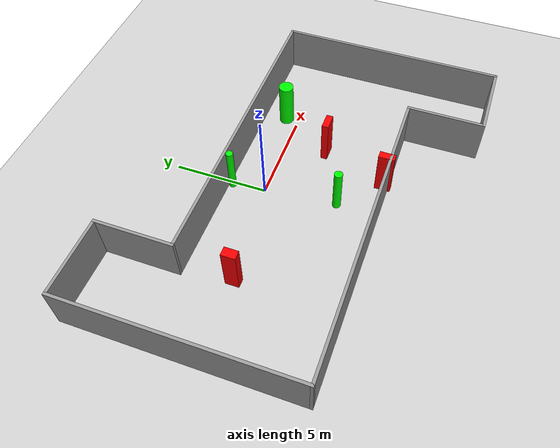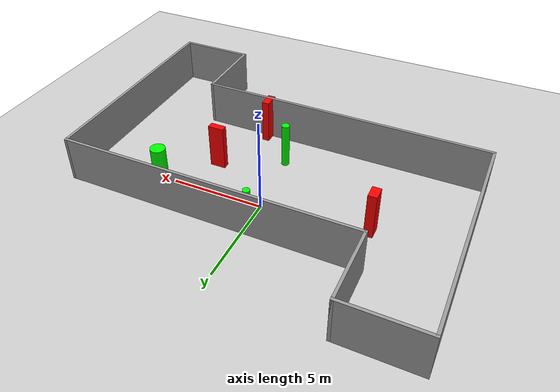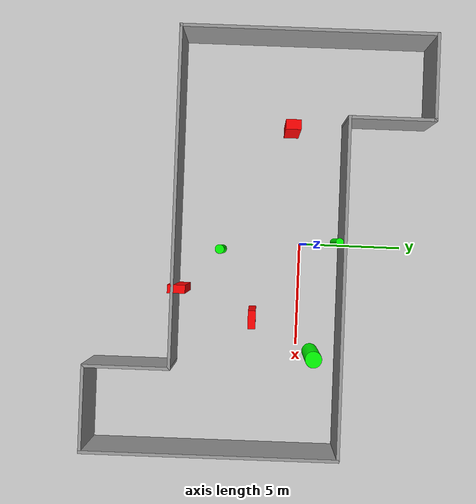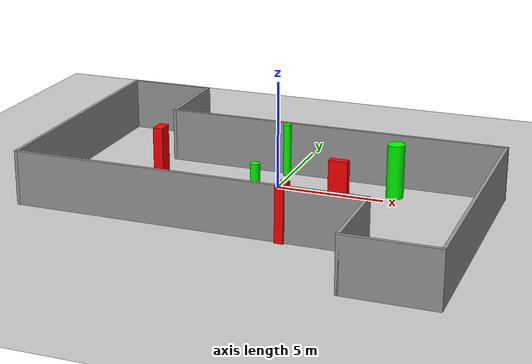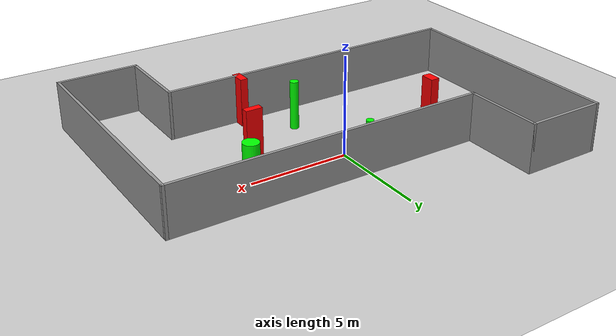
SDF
<sdf version="1.7">
 <world name="default">
  <light name="sun" type="directional">
   <pose>0 0 10 0 -0 0</pose>
   <diffuse>0.8 0.8 0.8 1</diffuse>
   <specular>0.2 0.2 0.2 1</specular>
   <attenuation>
    <range>1000</range>
    <constant>0.9</constant>
    <linear>0.01</linear>
    <quadratic>0.001</quadratic>
   </attenuation>
   <direction>-0.5 0.1 -0.9</direction>
   <spot><inner_angle>0</inner_angle><outer_angle>0</outer_angle><falloff>0</falloff></spot>
  </light>
  <model name="ground_plane">
   <static>1</static>
   <link name="link">
    <collision name="collision">
     <geometry><plane><normal>0 0 1</normal><size>100 100</size></plane></geometry>
     <surface>
      <contact><collide_bitmask>65535</collide_bitmask></contact>
      <friction><ode><mu>100</mu><mu2>50</mu2></ode></friction>
     </surface>
    </collision>
    <visual name="visual">
     <cast_shadows>0</cast_shadows>
     <geometry><plane><normal>0 0 1</normal><size>100 100</size></plane></geometry>
     <material>
      <script><uri>file://media/materials/scripts/gazebo.material</uri><name>Gazebo/Grey</name></script>
     </material>
    </visual>
   </link>
  </model>
  <gravity>0 0 -9.8</gravity>
  <magnetic_field>6e-06 2.3e-05 -4.2e-05</magnetic_field>
  <atmosphere type="adiabatic"/>
  <physics type="ode">
   <max_step_size>0.001</max_step_size>
   <real_time_factor>1</real_time_factor>
   <real_time_update_rate>1000</real_time_update_rate>
  </physics>
  <scene><ambient>0.4 0.4 0.4 1</ambient><background>0.7 0.7 0.7 1</background><shadows>1</shadows></scene>
  <spherical_coordinates>
   <surface_model>EARTH_WGS84</surface_model>
   <latitude_deg>0</latitude_deg>
   <longitude_deg>0</longitude_deg>
   <elevation>0</elevation>
   <heading_deg>0</heading_deg>
  </spherical_coordinates>
  <model name="my_base_walls">
   <link name="Wall_13">
    <collision name="Wall_13_Collision">
     <geometry><box><size>12.15 0.15 2.5</size></box></geometry>
     <pose>0 0 1.25 0 -0 0</pose>
    </collision>
    <visual name="Wall_13_Visual">
     <pose>0 0 1.25 0 -0 0</pose>
     <geometry><box><size>12.15 0.15 2.5</size></box></geometry>
     <material>
      <script><uri>file://media/materials/scripts/gazebo.material</uri><name>Gazebo/Grey</name></script>
      <ambient>1 1 1 1</ambient>
     </material>
     <meta><layer>0</layer></meta>
    </visual>
    <pose>10 -2 0 0 -0 1.5708</pose>
   </link>
   <link name="Wall_15">
    <collision name="Wall_15_Collision">
     <geometry><box><size>16.15 0.15 2.5</size></box></geometry>
     <pose>0 0 1.25 0 -0 0</pose>
    </collision>
    <visual name="Wall_15_Visual">
     <pose>0 0 1.25 0 -0 0</pose>
     <geometry><box><size>16.15 0.15 2.5</size></box></geometry>
     <material>
      <script><uri>file://media/materials/scripts/gazebo.material</uri><name>Gazebo/Grey</name></script>
      <ambient>1 1 1 1</ambient>
     </material>
     <meta><layer>0</layer></meta>
    </visual>
    <pose>2 4 0 0 -0 3.14159</pose>
   </link>
   <link name="Wall_17">
    <collision name="Wall_17_Collision">
     <geometry><box><size>4.15 0.15 2.5</size></box></geometry>
     <pose>0 0 1.25 0 -0 0</pose>
    </collision>
    <visual name="Wall_17_Visual">
     <pose>0 0 1.25 0 -0 0</pose>
     <geometry><box><size>4.15 0.15 2.5</size></box></geometry>
     <material>
      <script><uri>file://media/materials/scripts/gazebo.material</uri><name>Gazebo/Grey</name></script>
      <ambient>1 1 1 1</ambient>
     </material>
     <meta><layer>0</layer></meta>
    </visual>
    <pose>6 -6 0 0 -0 -1.5708</pose>
   </link>
   <link name="Wall_19">
    <collision name="Wall_19_Collision">
     <geometry><box><size>12.15 0.15 2.5</size></box></geometry>
     <pose>0 0 1.25 0 -0 0</pose>
    </collision>
    <visual name="Wall_19_Visual">
     <pose>0 0 1.25 0 -0 0</pose>
     <geometry><box><size>12.15 0.15 2.5</size></box></geometry>
     <material>
      <script><uri>file://media/materials/scripts/gazebo.material</uri><name>Gazebo/Grey</name></script>
      <ambient>1 1 1 1</ambient>
     </material>
     <meta><layer>0</layer></meta>
    </visual>
    <pose>-10 2 0 0 -0 1.5708</pose>
   </link>
   <link name="Wall_21">
    <collision name="Wall_21_Collision">
     <geometry><box><size>4.15 0.15 2.5</size></box></geometry>
     <pose>0 0 1.25 0 -0 0</pose>
    </collision>
    <visual name="Wall_21_Visual">
     <pose>0 0 1.25 0 -0 0</pose>
     <geometry><box><size>4.15 0.15 2.5</size></box></geometry>
     <material>
      <script><uri>file://media/materials/scripts/gazebo.material</uri><name>Gazebo/Grey</name></script>
      <ambient>1 1 1 1</ambient>
     </material>
     <meta><layer>0</layer></meta>
    </visual>
    <pose>-8 8 0 0 -0 0</pose>
   </link>
   <link name="Wall_23">
    <collision name="Wall_23_Collision">
     <geometry><box><size>4.15 0.15 2.5</size></box></geometry>
     <pose>0 0 1.25 0 -0 0</pose>
    </collision>
    <visual name="Wall_23_Visual">
     <pose>0 0 1.25 0 -0 0</pose>
     <geometry><box><size>4.15 0.15 2.5</size></box></geometry>
     <material>
      <script><uri>file://media/materials/scripts/gazebo.material</uri><name>Gazebo/Grey</name></script>
      <ambient>1 1 1 1</ambient>
     </material>
     <meta><layer>0</layer></meta>
    </visual>
    <pose>-6 6 0 0 -0 -1.5708</pose>
   </link>
   <link name="Wall_25">
    <collision name="Wall_25_Collision">
     <geometry><box><size>4.15 0.15 2.5</size></box></geometry>
     <pose>0 0 1.25 0 -0 0</pose>
    </collision>
    <visual name="Wall_25_Visual">
     <pose>0 0 1.25 0 -0 0</pose>
     <geometry><box><size>4.15 0.15 2.5</size></box></geometry>
     <material>
      <script><uri>file://media/materials/scripts/gazebo.material</uri><name>Gazebo/Grey</name></script>
      <ambient>1 1 1 1</ambient>
     </material>
     <meta><layer>0</layer></meta>
    </visual>
    <pose>8 -8 0 0 -0 0</pose>
   </link>
   <link name="Wall_9">
    <collision name="Wall_9_Collision">
     <geometry><box><size>16.15 0.15 2.5</size></box></geometry>
     <pose>0 0 1.25 0 -0 0</pose>
    </collision>
    <visual name="Wall_9_Visual">
     <pose>0 0 1.25 0 -0 0</pose>
     <geometry><box><size>16.15 0.15 2.5</size></box></geometry>
     <material>
      <script><uri>file://media/materials/scripts/gazebo.material</uri><name>Gazebo/Grey</name></script>
      <ambient>1 1 1 1</ambient>
     </material>
     <meta><layer>0</layer></meta>
    </visual>
    <pose>-2 -4 0 0 -0 3.14159</pose>
   </link>
   <static>1</static>
   <pose>-0 -2 0 0 -0 0</pose>
  </model>
  <model name="cylinder1">
   <static>1</static>
   <link name="link">
    <inertial>
     <mass>1</mass>
     <inertia><ixx>0.5</ixx><ixy>0</ixy><ixz>0</ixz><iyy>0.5</iyy><iyz>0</iyz><izz>1</izz></inertia>
    </inertial>
    <collision name="collision">
     <geometry><cylinder><radius>0.18565269757957947</radius><length>2.5</length></cylinder></geometry>
    </collision>
    <visual name="visual">
     <geometry><cylinder><radius>0.18565269757957947</radius><length>2.5</length></cylinder></geometry>
     <material>
      <ambient>0 1 0 1</ambient>
      <diffuse>0 1 0 1</diffuse>
      <specular>0.1 0.1 0.1 1</specular>
      <emissive>0 0 0 0</emissive>
     </material>
    </visual>
   </link>
   <pose>-0.164323791348723 1.7271497793196646 1.25 0 0 0</pose>
  </model>
  <model name="cylinder2">
   <static>1</static>
   <link name="link">
    <inertial>
     <mass>1</mass>
     <inertia><ixx>0.5</ixx><ixy>0</ixy><ixz>0</ixz><iyy>0.5</iyy><iyz>0</iyz><izz>1</izz></inertia>
    </inertial>
    <collision name="collision">
     <geometry><cylinder><radius>0.3934975245306805</radius><length>2.5</length></cylinder></geometry>
    </collision>
    <visual name="visual">
     <geometry><cylinder><radius>0.3934975245306805</radius><length>2.5</length></cylinder></geometry>
     <material>
      <ambient>0 1 0 1</ambient>
      <diffuse>0 1 0 1</diffuse>
      <specular>0.1 0.1 0.1 1</specular>
      <emissive>0 0 0 0</emissive>
     </material>
    </visual>
   </link>
   <pose>5.329602008165905 0.7060542930597471 1.25 0 0 0</pose>
  </model>
  <model name="cylinder3">
   <static>1</static>
   <link name="link">
    <inertial>
     <mass>1</mass>
     <inertia><ixx>0.5</ixx><ixy>0</ixy><ixz>0</ixz><iyy>0.5</iyy><iyz>0</iyz><izz>1</izz></inertia>
    </inertial>
    <collision name="collision">
     <geometry><cylinder><radius>0.2160251333096059</radius><length>2.5</length></cylinder></geometry>
    </collision>
    <visual name="visual">
     <geometry><cylinder><radius>0.2160251333096059</radius><length>2.5</length></cylinder></geometry>
     <material>
      <ambient>0 1 0 1</ambient>
      <diffuse>0 1 0 1</diffuse>
      <specular>0.1 0.1 0.1 1</specular>
      <emissive>0 0 0 0</emissive>
     </material>
    </visual>
   </link>
   <pose>0.359320441333308 -3.836688826917281 1.25 0 0 0</pose>
  </model>
  <model name="box1">
   <static>1</static>
   <link name="link">
    <inertial>
     <mass>1</mass>
     <inertia><ixx>0.083</ixx><ixy>0</ixy><ixz>0</ixz><iyy>0.083</iyy><iyz>0</iyz><izz>0.083</izz></inertia>
    </inertial>
    <collision name="collision">
     <geometry><box><size>0.39058341443862504 0.8310311797564504 2.5</size></box></geometry>
    </collision>
    <visual name="visual">
     <geometry><box><size>0.39058341443862504 0.8310311797564504 2.5</size></box></geometry>
     <material>
      <ambient>1 0 0 1</ambient>
      <diffuse>1 0 0 1</diffuse>
      <specular>0.1 0.1 0.1 1</specular>
      <emissive>0 0 0 0</emissive>
     </material>
    </visual>
    <sensor name="my_contact" type="contact">
     <contact><collision>box_collision</collision><topic>__default_topic__</topic></contact>
    </sensor>
   </link>
   <pose>2.2874692310331106 -5.788132063300383 1.25 0 0 0</pose>
  </model>
  <model name="box2">
   <static>1</static>
   <link name="link">
    <inertial>
     <mass>1</mass>
     <inertia><ixx>0.083</ixx><ixy>0</ixy><ixz>0</ixz><iyy>0.083</iyy><iyz>0</iyz><izz>0.083</izz></inertia>
    </inertial>
    <collision name="collision">
     <geometry><box><size>0.4627416650266385 0.7233962221668773 2.5</size></box></geometry>
    </collision>
    <visual name="visual">
     <geometry><box><size>0.4627416650266385 0.7233962221668773 2.5</size></box></geometry>
     <material>
      <ambient>1 0 0 1</ambient>
      <diffuse>1 0 0 1</diffuse>
      <specular>0.1 0.1 0.1 1</specular>
      <emissive>0 0 0 0</emissive>
     </material>
    </visual>
    <sensor name="my_contact" type="contact">
     <contact><collision>box_collision</collision><topic>__default_topic__</topic></contact>
    </sensor>
   </link>
   <pose>-5.556266464950172 -0.6071756682403144 1.25 0 0 0</pose>
  </model>
  <model name="box3">
   <static>1</static>
   <link name="link">
    <inertial>
     <mass>1</mass>
     <inertia><ixx>0.083</ixx><ixy>0</ixy><ixz>0</ixz><iyy>0.083</iyy><iyz>0</iyz><izz>0.083</izz></inertia>
    </inertial>
    <collision name="collision">
     <geometry><box><size>0.855148787237082 0.35342492213503446 2.5</size></box></geometry>
    </collision>
    <visual name="visual">
     <geometry><box><size>0.855148787237082 0.35342492213503446 2.5</size></box></geometry>
     <material>
      <ambient>1 0 0 1</ambient>
      <diffuse>1 0 0 1</diffuse>
      <specular>0.1 0.1 0.1 1</specular>
      <emissive>0 0 0 0</emissive>
     </material>
    </visual>
    <sensor name="my_contact" type="contact">
     <contact><collision>box_collision</collision><topic>__default_topic__</topic></contact>
    </sensor>
   </link>
   <pose>3.5903390632158754 -2.2326511564191804 1.25 0 0 0</pose>
  </model>
 </world>
</sdf>
